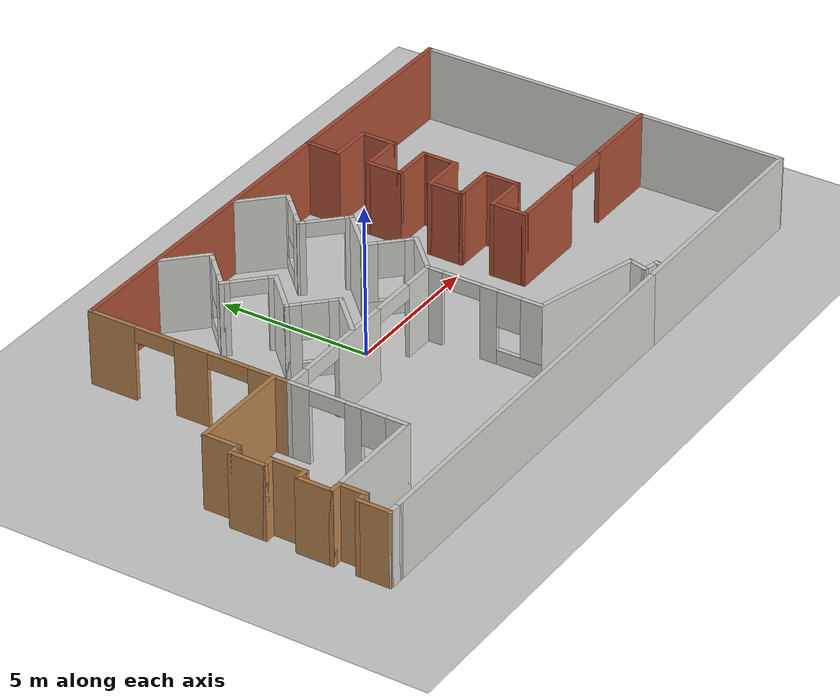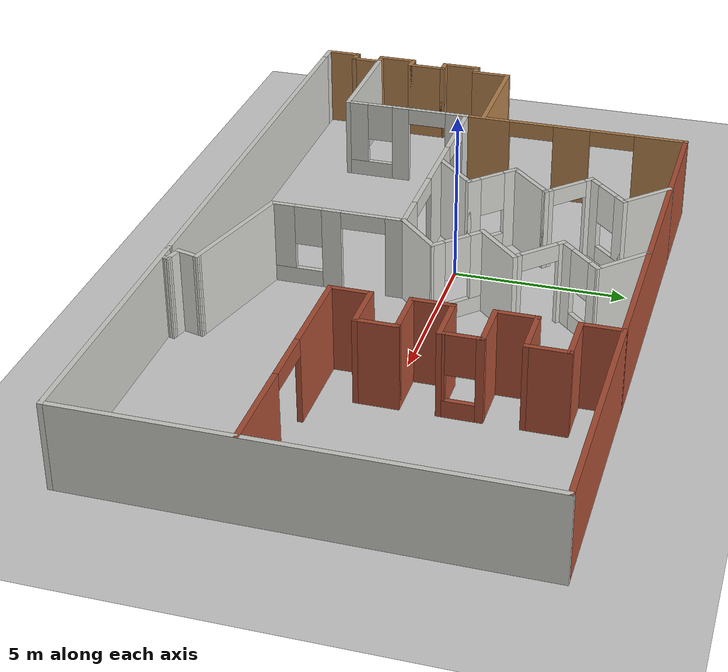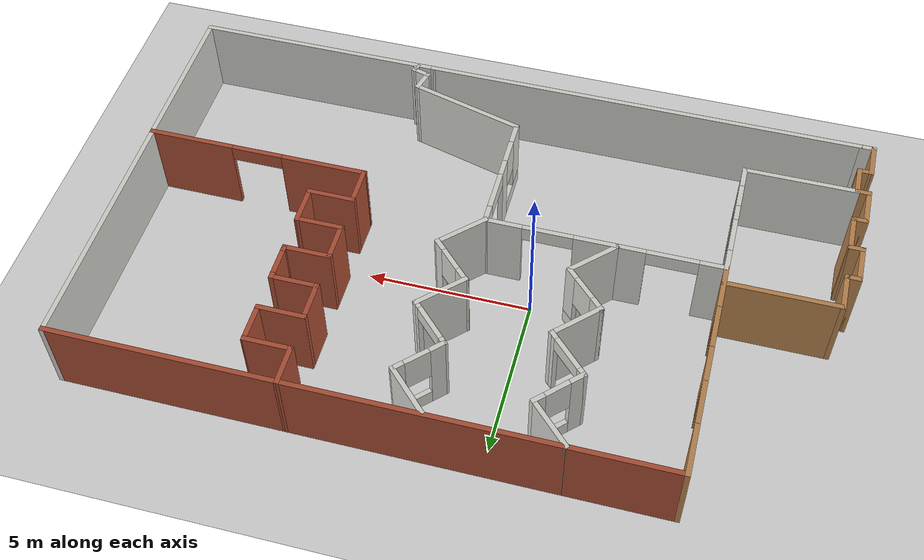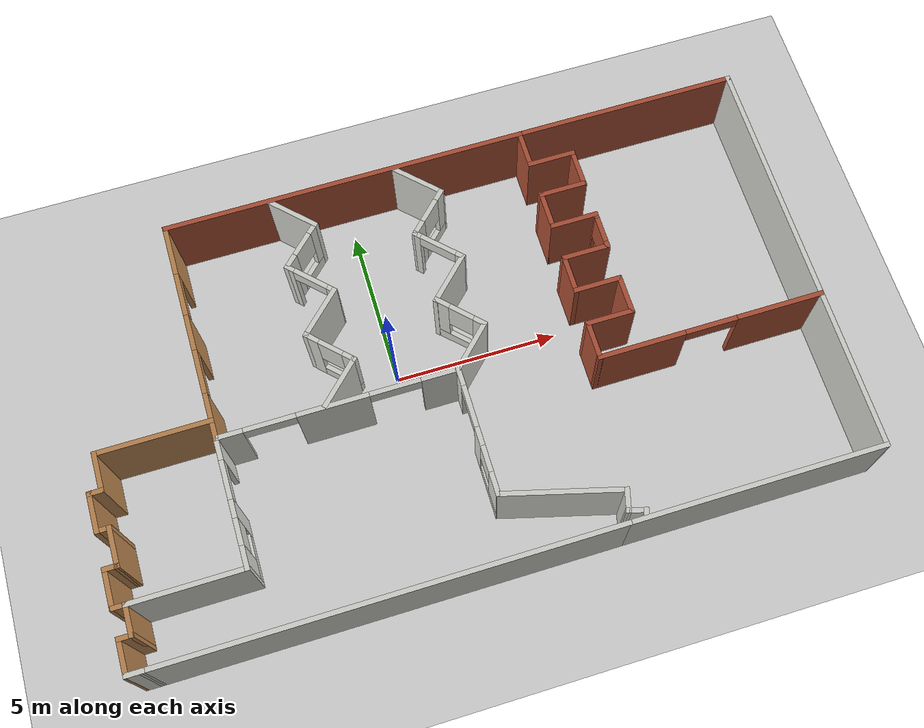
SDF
<sdf version="1.6">
 <world name="default">
  <model name="ground_plane">
   <static>1</static>
   <link name="link">
    <collision name="collision">
     <geometry><plane><normal>0 0 1</normal><size>100 100</size></plane></geometry>
     <surface>
      <contact><collide_bitmask>65535</collide_bitmask></contact>
      <friction><ode><mu>100</mu><mu2>50</mu2></ode></friction>
     </surface>
    </collision>
    <visual name="visual">
     <cast_shadows>0</cast_shadows>
     <geometry><plane><normal>0 0 1</normal><size>100 100</size></plane></geometry>
     <material>
      <script><uri>file://media/materials/scripts/gazebo.material</uri><name>Gazebo/Grey</name></script>
     </material>
    </visual>
   </link>
  </model>
  <model name="Building">
   <pose>1.68029 -0.499635 0 0 -0 0</pose>
   <link name="Wall_10">
    <collision name="Wall_10_Collision">
     <geometry><box><size>1.75 0.15 2.5</size></box></geometry>
     <pose>0 0 1.25 0 -0 0</pose>
    </collision>
    <visual name="Wall_10_Visual">
     <pose>0 0 1.25 0 -0 0</pose>
     <geometry><box><size>1.75 0.15 2.5</size></box></geometry>
     <material>
      <script><uri>file://media/materials/scripts/gazebo.material</uri><name>Gazebo/CeilingTiled</name></script>
      <ambient>0.819608 0.317647 0.317647 1</ambient>
     </material>
     <meta><layer>0</layer></meta>
    </visual>
    <pose>-3.36491 2.28919 0 0 -0 0.785398</pose>
   </link>
   <link name="Wall_101">
    <collision name="Wall_101_Collision">
     <geometry><box><size>3.69503 0.15 2.5</size></box></geometry>
     <pose>0 0 1.25 0 -0 0</pose>
    </collision>
    <visual name="Wall_101_Visual">
     <pose>0 0 1.25 0 -0 0</pose>
     <geometry><box><size>3.69503 0.15 2.5</size></box></geometry>
     <material>
      <script><uri>file://media/materials/scripts/gazebo.material</uri><name>Gazebo/CeilingTiled</name></script>
      <ambient>0.270588 0.431373 0.760784 1</ambient>
     </material>
     <meta><layer>0</layer></meta>
    </visual>
    <pose>1.71281 -4.90672 0 0 -0 2.88037</pose>
   </link>
   <link name="Wall_103">
    <collision name="Wall_103_Collision">
     <geometry><box><size>3.5 0.15 2.5</size></box></geometry>
     <pose>0 0 1.25 0 -0 0</pose>
    </collision>
    <visual name="Wall_103_Visual">
     <pose>0 0 1.25 0 -0 0</pose>
     <geometry><box><size>3.5 0.15 2.5</size></box></geometry>
     <material>
      <script><uri>file://media/materials/scripts/gazebo.material</uri><name>Gazebo/CeilingTiled</name></script>
      <ambient>0.901961 0.458824 0.458824 1</ambient>
     </material>
     <meta><layer>0</layer></meta>
    </visual>
    <pose>-8.79366 -4.43055 0 0 -0 3.14159</pose>
   </link>
   <link name="Wall_106">
    <collision name="Wall_106_Collision">
     <geometry><box><size>1 0.15 2.5</size></box></geometry>
     <pose>0 0 1.25 0 -0 0</pose>
    </collision>
    <visual name="Wall_106_Visual">
     <pose>0 0 1.25 0 -0 0</pose>
     <geometry><box><size>1 0.15 2.5</size></box></geometry>
     <material>
      <script><uri>file://media/materials/scripts/gazebo.material</uri><name>Gazebo/Wood</name></script>
      <ambient>1 1 1 1</ambient>
     </material>
     <meta><layer>0</layer></meta>
    </visual>
    <pose>-10.4687 -4.85555 0 0 -0 -1.5708</pose>
   </link>
   <link name="Wall_107">
    <collision name="Wall_107_Collision">
     <geometry><box><size>0.5 0.15 2.5</size></box></geometry>
     <pose>0 0 1.25 0 -0 0</pose>
    </collision>
    <visual name="Wall_107_Visual">
     <pose>0 0 1.25 0 -0 0</pose>
     <geometry><box><size>0.5 0.15 2.5</size></box></geometry>
     <material>
      <script><uri>file://media/materials/scripts/gazebo.material</uri><name>Gazebo/Wood</name></script>
      <ambient>1 1 1 1</ambient>
     </material>
     <meta><layer>0</layer></meta>
    </visual>
    <pose>-10.6437 -5.28055 0 0 -0 3.14159</pose>
   </link>
   <link name="Wall_109">
    <collision name="Wall_109_Collision">
     <geometry><box><size>1.14866 0.15 2.5</size></box></geometry>
     <pose>0 0 1.25 0 -0 0</pose>
    </collision>
    <visual name="Wall_109_Visual">
     <pose>0 0 1.25 0 -0 0</pose>
     <geometry><box><size>1.14866 0.15 2.5</size></box></geometry>
     <material>
      <script><uri>file://media/materials/scripts/gazebo.material</uri><name>Gazebo/Wood</name></script>
      <ambient>1 1 1 1</ambient>
     </material>
     <meta><layer>0</layer></meta>
    </visual>
    <pose>-10.8186 -5.77988 0 0 -0 -1.57071</pose>
   </link>
   <link name="Wall_11">
    <pose>-3.36491 3.42056 0 0 -0 2.35619</pose>
    <visual name="Wall_11_Visual_0">
     <pose>-0.725051 0 1.25 0 -0 0</pose>
     <geometry><box><size>0.299898 0.15 2.5</size></box></geometry>
     <material>
      <script><uri>file://media/materials/scripts/gazebo.material</uri><name>Gazebo/CeilingTiled</name></script>
      <ambient>0.819608 0.317647 0.317647 1</ambient>
     </material>
     <meta><layer>0</layer></meta>
    </visual>
    <collision name="Wall_11_Collision_0">
     <geometry><box><size>0.299898 0.15 2.5</size></box></geometry>
     <pose>-0.725051 0 1.25 0 -0 0</pose>
    </collision>
    <visual name="Wall_11_Visual_1">
     <pose>0.716913 0 1.25 0 -0 0</pose>
     <geometry><box><size>0.316173 0.15 2.5</size></box></geometry>
     <material>
      <script><uri>file://media/materials/scripts/gazebo.material</uri><name>Gazebo/CeilingTiled</name></script>
      <ambient>0.819608 0.317647 0.317647 1</ambient>
     </material>
     <meta><layer>0</layer></meta>
    </visual>
    <collision name="Wall_11_Collision_1">
     <geometry><box><size>0.316173 0.15 2.5</size></box></geometry>
     <pose>0.716913 0 1.25 0 -0 0</pose>
    </collision>
    <visual name="Wall_11_Visual_2">
     <pose>-0.008138 0 2.25 0 -0 0</pose>
     <geometry><box><size>1.13393 0.15 0.5</size></box></geometry>
     <material>
      <script><uri>file://media/materials/scripts/gazebo.material</uri><name>Gazebo/CeilingTiled</name></script>
      <ambient>0.819608 0.317647 0.317647 1</ambient>
     </material>
     <meta><layer>0</layer></meta>
    </visual>
    <collision name="Wall_11_Collision_2">
     <geometry><box><size>1.13393 0.15 0.5</size></box></geometry>
     <pose>-0.008138 0 2.25 0 -0 0</pose>
    </collision>
   </link>
   <link name="Wall_110">
    <collision name="Wall_110_Collision">
     <geometry><box><size>0.583483 0.15 2.5</size></box></geometry>
     <pose>0 0 1.25 0 -0 0</pose>
    </collision>
    <visual name="Wall_110_Visual">
     <pose>0 0 1.25 0 -0 0</pose>
     <geometry><box><size>0.583483 0.15 2.5</size></box></geometry>
     <material>
      <script><uri>file://media/materials/scripts/gazebo.material</uri><name>Gazebo/CeilingTiled</name></script>
      <ambient>0.760784 0.662745 0.627451 1</ambient>
     </material>
     <meta><layer>0</layer></meta>
    </visual>
    <pose>-10.6018 -6.27956 0 0 -0 -0.001671</pose>
   </link>
   <link name="Wall_113">
    <collision name="Wall_113_Collision">
     <geometry><box><size>0.5 0.15 2.5</size></box></geometry>
     <pose>0 0 1.25 0 -0 0</pose>
    </collision>
    <visual name="Wall_113_Visual">
     <pose>0 0 1.25 0 -0 0</pose>
     <geometry><box><size>0.5 0.15 2.5</size></box></geometry>
     <material>
      <script><uri>file://media/materials/scripts/gazebo.material</uri><name>Gazebo/Wood</name></script>
      <ambient>1 1 1 1</ambient>
     </material>
     <meta><layer>0</layer></meta>
    </visual>
    <pose>-10.6437 -4.43055 0 0 -0 3.14159</pose>
   </link>
   <link name="Wall_114">
    <collision name="Wall_114_Collision">
     <geometry><box><size>1.25 0.15 2.5</size></box></geometry>
     <pose>0 0 1.25 0 -0 0</pose>
    </collision>
    <visual name="Wall_114_Visual">
     <pose>0 0 1.25 0 -0 0</pose>
     <geometry><box><size>1.25 0.15 2.5</size></box></geometry>
     <material>
      <script><uri>file://media/materials/scripts/gazebo.material</uri><name>Gazebo/Wood</name></script>
      <ambient>1 1 1 1</ambient>
     </material>
     <meta><layer>0</layer></meta>
    </visual>
    <pose>-10.8187 -3.88055 0 0 -0 1.5708</pose>
   </link>
   <link name="Wall_115">
    <collision name="Wall_115_Collision">
     <geometry><box><size>0.5 0.15 2.5</size></box></geometry>
     <pose>0 0 1.25 0 -0 0</pose>
    </collision>
    <visual name="Wall_115_Visual">
     <pose>0 0 1.25 0 -0 0</pose>
     <geometry><box><size>0.5 0.15 2.5</size></box></geometry>
     <material>
      <script><uri>file://media/materials/scripts/gazebo.material</uri><name>Gazebo/Wood</name></script>
      <ambient>1 1 1 1</ambient>
     </material>
     <meta><layer>0</layer></meta>
    </visual>
    <pose>-10.6437 -3.33055 0 0 -0 0</pose>
   </link>
   <link name="Wall_116">
    <collision name="Wall_116_Collision">
     <geometry><box><size>1.25 0.15 2.5</size></box></geometry>
     <pose>0 0 1.25 0 -0 0</pose>
    </collision>
    <visual name="Wall_116_Visual">
     <pose>0 0 1.25 0 -0 0</pose>
     <geometry><box><size>1.25 0.15 2.5</size></box></geometry>
     <material>
      <script><uri>file://media/materials/scripts/gazebo.material</uri><name>Gazebo/Wood</name></script>
      <ambient>1 1 1 1</ambient>
     </material>
     <meta><layer>0</layer></meta>
    </visual>
    <pose>-10.4687 -2.78055 0 0 -0 1.5708</pose>
   </link>
   <link name="Wall_117">
    <collision name="Wall_117_Collision">
     <geometry><box><size>0.5 0.15 2.5</size></box></geometry>
     <pose>0 0 1.25 0 -0 0</pose>
    </collision>
    <visual name="Wall_117_Visual">
     <pose>0 0 1.25 0 -0 0</pose>
     <geometry><box><size>0.5 0.15 2.5</size></box></geometry>
     <material>
      <script><uri>file://media/materials/scripts/gazebo.material</uri><name>Gazebo/Wood</name></script>
      <ambient>1 1 1 1</ambient>
     </material>
     <meta><layer>0</layer></meta>
    </visual>
    <pose>-10.6437 -2.23055 0 0 -0 3.14159</pose>
   </link>
   <link name="Wall_118">
    <collision name="Wall_118_Collision">
     <geometry><box><size>1.25 0.15 2.5</size></box></geometry>
     <pose>0 0 1.25 0 -0 0</pose>
    </collision>
    <visual name="Wall_118_Visual">
     <pose>0 0 1.25 0 -0 0</pose>
     <geometry><box><size>1.25 0.15 2.5</size></box></geometry>
     <material>
      <script><uri>file://media/materials/scripts/gazebo.material</uri><name>Gazebo/Wood</name></script>
      <ambient>1 1 1 1</ambient>
     </material>
     <meta><layer>0</layer></meta>
    </visual>
    <pose>-10.8187 -1.68055 0 0 -0 1.5708</pose>
   </link>
   <link name="Wall_119">
    <collision name="Wall_119_Collision">
     <geometry><box><size>0.5 0.15 2.5</size></box></geometry>
     <pose>0 0 1.25 0 -0 0</pose>
    </collision>
    <visual name="Wall_119_Visual">
     <pose>0 0 1.25 0 -0 0</pose>
     <geometry><box><size>0.5 0.15 2.5</size></box></geometry>
     <material>
      <script><uri>file://media/materials/scripts/gazebo.material</uri><name>Gazebo/Wood</name></script>
      <ambient>1 1 1 1</ambient>
     </material>
     <meta><layer>0</layer></meta>
    </visual>
    <pose>-10.6437 -1.13055 0 0 -0 0</pose>
   </link>
   <link name="Wall_12">
    <pose>-3.36491 4.55193 0 0 -0 0.785398</pose>
    <visual name="Wall_12_Visual_0">
     <pose>-0.61476 0 1.25 0 -0 0</pose>
     <geometry><box><size>0.52048 0.15 2.5</size></box></geometry>
     <material>
      <script><uri>file://media/materials/scripts/gazebo.material</uri><name>Gazebo/CeilingTiled</name></script>
      <ambient>0.819608 0.317647 0.317647 1</ambient>
     </material>
     <meta><layer>0</layer></meta>
    </visual>
    <collision name="Wall_12_Collision_0">
     <geometry><box><size>0.52048 0.15 2.5</size></box></geometry>
     <pose>-0.61476 0 1.25 0 -0 0</pose>
    </collision>
    <visual name="Wall_12_Visual_1">
     <pose>0.26024 0 0.25 0 -0 0</pose>
     <geometry><box><size>1.22952 0.15 0.5</size></box></geometry>
     <material>
      <script><uri>file://media/materials/scripts/gazebo.material</uri><name>Gazebo/CeilingTiled</name></script>
      <ambient>0.819608 0.317647 0.317647 1</ambient>
     </material>
     <meta><layer>0</layer></meta>
    </visual>
    <collision name="Wall_12_Collision_1">
     <geometry><box><size>1.22952 0.15 0.5</size></box></geometry>
     <pose>0.26024 0 0.25 0 -0 0</pose>
    </collision>
    <visual name="Wall_12_Visual_2">
     <pose>0.66024 0 1.5 0 -0 0</pose>
     <geometry><box><size>0.42952 0.15 2</size></box></geometry>
     <material>
      <script><uri>file://media/materials/scripts/gazebo.material</uri><name>Gazebo/CeilingTiled</name></script>
      <ambient>0.819608 0.317647 0.317647 1</ambient>
     </material>
     <meta><layer>0</layer></meta>
    </visual>
    <collision name="Wall_12_Collision_2">
     <geometry><box><size>0.42952 0.15 2</size></box></geometry>
     <pose>0.66024 0 1.5 0 -0 0</pose>
    </collision>
    <visual name="Wall_12_Visual_3">
     <pose>0.04548 0 1.9 0 -0 0</pose>
     <geometry><box><size>0.8 0.15 1.2</size></box></geometry>
     <material>
      <script><uri>file://media/materials/scripts/gazebo.material</uri><name>Gazebo/CeilingTiled</name></script>
      <ambient>0.819608 0.317647 0.317647 1</ambient>
     </material>
     <meta><layer>0</layer></meta>
    </visual>
    <collision name="Wall_12_Collision_3">
     <geometry><box><size>0.8 0.15 1.2</size></box></geometry>
     <pose>0.04548 0 1.9 0 -0 0</pose>
    </collision>
   </link>
   <link name="Wall_120">
    <collision name="Wall_120_Collision">
     <geometry><box><size>1.25 0.15 2.5</size></box></geometry>
     <pose>0 0 1.25 0 -0 0</pose>
    </collision>
    <visual name="Wall_120_Visual">
     <pose>0 0 1.25 0 -0 0</pose>
     <geometry><box><size>1.25 0.15 2.5</size></box></geometry>
     <material>
      <script><uri>file://media/materials/scripts/gazebo.material</uri><name>Gazebo/Wood</name></script>
      <ambient>1 1 1 1</ambient>
     </material>
     <meta><layer>0</layer></meta>
    </visual>
    <pose>-10.4687 -0.580548 0 0 -0 1.5708</pose>
   </link>
   <link name="Wall_121">
    <collision name="Wall_121_Collision">
     <geometry><box><size>3.5 0.15 2.5</size></box></geometry>
     <pose>0 0 1.25 0 -0 0</pose>
    </collision>
    <visual name="Wall_121_Visual">
     <pose>0 0 1.25 0 -0 0</pose>
     <geometry><box><size>3.5 0.15 2.5</size></box></geometry>
     <material>
      <script><uri>file://media/materials/scripts/gazebo.material</uri><name>Gazebo/Wood</name></script>
      <ambient>1 1 1 1</ambient>
     </material>
     <meta><layer>0</layer></meta>
    </visual>
    <pose>-8.79366 -0.030549 0 0 -0 0</pose>
   </link>
   <link name="Wall_14">
    <collision name="Wall_14_Collision">
     <geometry><box><size>1.75 0.15 2.5</size></box></geometry>
     <pose>0 0 1.25 0 -0 0</pose>
    </collision>
    <visual name="Wall_14_Visual">
     <pose>0 0 1.25 0 -0 0</pose>
     <geometry><box><size>1.75 0.15 2.5</size></box></geometry>
     <material>
      <script><uri>file://media/materials/scripts/gazebo.material</uri><name>Gazebo/CeilingTiled</name></script>
      <ambient>0.819608 0.317647 0.317647 1</ambient>
     </material>
     <meta><layer>0</layer></meta>
    </visual>
    <pose>-3.36491 5.6833 0 0 -0 2.35619</pose>
   </link>
   <link name="Wall_18">
    <pose>-7.11866 -2.50555 0 0 -0 -1.5708</pose>
    <visual name="Wall_18_Visual_0">
     <pose>-1.63024 0 1.25 0 -0 0</pose>
     <geometry><box><size>0.739525 0.15 2.5</size></box></geometry>
     <material>
      <script><uri>file://media/materials/scripts/gazebo.material</uri><name>Gazebo/CeilingTiled</name></script>
      <ambient>0.901961 0.458824 0.458824 1</ambient>
     </material>
     <meta><layer>0</layer></meta>
    </visual>
    <collision name="Wall_18_Collision_0">
     <geometry><box><size>0.739525 0.15 2.5</size></box></geometry>
     <pose>-1.63024 0 1.25 0 -0 0</pose>
    </collision>
    <visual name="Wall_18_Visual_1">
     <pose>0.19611 0 1.25 0 -0 0</pose>
     <geometry><box><size>0.547855 0.15 2.5</size></box></geometry>
     <material>
      <script><uri>file://media/materials/scripts/gazebo.material</uri><name>Gazebo/CeilingTiled</name></script>
      <ambient>0.901961 0.458824 0.458824 1</ambient>
     </material>
     <meta><layer>0</layer></meta>
    </visual>
    <collision name="Wall_18_Collision_1">
     <geometry><box><size>0.547855 0.15 2.5</size></box></geometry>
     <pose>0.19611 0 1.25 0 -0 0</pose>
    </collision>
    <visual name="Wall_18_Visual_2">
     <pose>1.23502 0 0.25 0 -0 0</pose>
     <geometry><box><size>1.52996 0.15 0.5</size></box></geometry>
     <material>
      <script><uri>file://media/materials/scripts/gazebo.material</uri><name>Gazebo/CeilingTiled</name></script>
      <ambient>0.901961 0.458824 0.458824 1</ambient>
     </material>
     <meta><layer>0</layer></meta>
    </visual>
    <collision name="Wall_18_Collision_2">
     <geometry><box><size>1.52996 0.15 0.5</size></box></geometry>
     <pose>1.23502 0 0.25 0 -0 0</pose>
    </collision>
    <visual name="Wall_18_Visual_3">
     <pose>1.63502 0 1.5 0 -0 0</pose>
     <geometry><box><size>0.729962 0.15 2</size></box></geometry>
     <material>
      <script><uri>file://media/materials/scripts/gazebo.material</uri><name>Gazebo/CeilingTiled</name></script>
      <ambient>0.901961 0.458824 0.458824 1</ambient>
     </material>
     <meta><layer>0</layer></meta>
    </visual>
    <collision name="Wall_18_Collision_3">
     <geometry><box><size>0.729962 0.15 2</size></box></geometry>
     <pose>1.63502 0 1.5 0 -0 0</pose>
    </collision>
    <visual name="Wall_18_Visual_4">
     <pose>0.870038 0 1.9 0 -0 0</pose>
     <geometry><box><size>0.8 0.15 1.2</size></box></geometry>
     <material>
      <script><uri>file://media/materials/scripts/gazebo.material</uri><name>Gazebo/CeilingTiled</name></script>
      <ambient>0.901961 0.458824 0.458824 1</ambient>
     </material>
     <meta><layer>0</layer></meta>
    </visual>
    <collision name="Wall_18_Collision_4">
     <geometry><box><size>0.8 0.15 1.2</size></box></geometry>
     <pose>0.870038 0 1.9 0 -0 0</pose>
    </collision>
    <visual name="Wall_18_Visual_5">
     <pose>-0.669147 0 2.25 0 -0 0</pose>
     <geometry><box><size>1.18266 0.15 0.5</size></box></geometry>
     <material>
      <script><uri>file://media/materials/scripts/gazebo.material</uri><name>Gazebo/CeilingTiled</name></script>
      <ambient>0.901961 0.458824 0.458824 1</ambient>
     </material>
     <meta><layer>0</layer></meta>
    </visual>
    <collision name="Wall_18_Collision_5">
     <geometry><box><size>1.18266 0.15 0.5</size></box></geometry>
     <pose>-0.669147 0 2.25 0 -0 0</pose>
    </collision>
   </link>
   <link name="Wall_21">
    <pose>-0.018662 -2.50555 0 0 -0 -1.5708</pose>
    <visual name="Wall_21_Visual_0">
     <pose>-1.69808 0 1.25 0 -0 0</pose>
     <geometry><box><size>0.603849 0.15 2.5</size></box></geometry>
     <material>
      <script><uri>file://media/materials/scripts/gazebo.material</uri><name>Gazebo/CeilingTiled</name></script>
      <ambient>0.270588 0.431373 0.760784 1</ambient>
     </material>
     <meta><layer>0</layer></meta>
    </visual>
    <collision name="Wall_21_Collision_0">
     <geometry><box><size>0.603849 0.15 2.5</size></box></geometry>
     <pose>-1.69808 0 1.25 0 -0 0</pose>
    </collision>
    <visual name="Wall_21_Visual_1">
     <pose>0.184804 0 1.25 0 -0 0</pose>
     <geometry><box><size>0.570468 0.15 2.5</size></box></geometry>
     <material>
      <script><uri>file://media/materials/scripts/gazebo.material</uri><name>Gazebo/CeilingTiled</name></script>
      <ambient>0.270588 0.431373 0.760784 1</ambient>
     </material>
     <meta><layer>0</layer></meta>
    </visual>
    <collision name="Wall_21_Collision_1">
     <geometry><box><size>0.570468 0.15 2.5</size></box></geometry>
     <pose>0.184804 0 1.25 0 -0 0</pose>
    </collision>
    <visual name="Wall_21_Visual_2">
     <pose>1.23502 0 0.25 0 -0 0</pose>
     <geometry><box><size>1.52996 0.15 0.5</size></box></geometry>
     <material>
      <script><uri>file://media/materials/scripts/gazebo.material</uri><name>Gazebo/CeilingTiled</name></script>
      <ambient>0.270588 0.431373 0.760784 1</ambient>
     </material>
     <meta><layer>0</layer></meta>
    </visual>
    <collision name="Wall_21_Collision_2">
     <geometry><box><size>1.52996 0.15 0.5</size></box></geometry>
     <pose>1.23502 0 0.25 0 -0 0</pose>
    </collision>
    <visual name="Wall_21_Visual_3">
     <pose>1.63502 0 1.5 0 -0 0</pose>
     <geometry><box><size>0.729962 0.15 2</size></box></geometry>
     <material>
      <script><uri>file://media/materials/scripts/gazebo.material</uri><name>Gazebo/CeilingTiled</name></script>
      <ambient>0.270588 0.431373 0.760784 1</ambient>
     </material>
     <meta><layer>0</layer></meta>
    </visual>
    <collision name="Wall_21_Collision_3">
     <geometry><box><size>0.729962 0.15 2</size></box></geometry>
     <pose>1.63502 0 1.5 0 -0 0</pose>
    </collision>
    <visual name="Wall_21_Visual_4">
     <pose>0.870038 0 1.9 0 -0 0</pose>
     <geometry><box><size>0.8 0.15 1.2</size></box></geometry>
     <material>
      <script><uri>file://media/materials/scripts/gazebo.material</uri><name>Gazebo/CeilingTiled</name></script>
      <ambient>0.270588 0.431373 0.760784 1</ambient>
     </material>
     <meta><layer>0</layer></meta>
    </visual>
    <collision name="Wall_21_Collision_4">
     <geometry><box><size>0.8 0.15 1.2</size></box></geometry>
     <pose>0.870038 0 1.9 0 -0 0</pose>
    </collision>
    <visual name="Wall_21_Visual_5">
     <pose>-0.748291 0 2.25 0 -0 0</pose>
     <geometry><box><size>1.29572 0.15 0.5</size></box></geometry>
     <material>
      <script><uri>file://media/materials/scripts/gazebo.material</uri><name>Gazebo/CeilingTiled</name></script>
      <ambient>0.270588 0.431373 0.760784 1</ambient>
     </material>
     <meta><layer>0</layer></meta>
    </visual>
    <collision name="Wall_21_Collision_5">
     <geometry><box><size>1.29572 0.15 0.5</size></box></geometry>
     <pose>-0.748291 0 2.25 0 -0 0</pose>
    </collision>
   </link>
   <link name="Wall_4">
    <pose>-3.36491 1.15782 0 0 -0 -0.785398</pose>
    <visual name="Wall_4_Visual_0">
     <pose>-0.622738 0 1.25 0 -0 0</pose>
     <geometry><box><size>0.504524 0.15 2.5</size></box></geometry>
     <material>
      <script><uri>file://media/materials/scripts/gazebo.material</uri><name>Gazebo/CeilingTiled</name></script>
      <ambient>0.819608 0.317647 0.317647 1</ambient>
     </material>
     <meta><layer>0</layer></meta>
    </visual>
    <collision name="Wall_4_Collision_0">
     <geometry><box><size>0.504524 0.15 2.5</size></box></geometry>
     <pose>-0.622738 0 1.25 0 -0 0</pose>
    </collision>
    <visual name="Wall_4_Visual_1">
     <pose>0.252262 0 0.25 0 -0 0</pose>
     <geometry><box><size>1.24548 0.15 0.5</size></box></geometry>
     <material>
      <script><uri>file://media/materials/scripts/gazebo.material</uri><name>Gazebo/CeilingTiled</name></script>
      <ambient>0.819608 0.317647 0.317647 1</ambient>
     </material>
     <meta><layer>0</layer></meta>
    </visual>
    <collision name="Wall_4_Collision_1">
     <geometry><box><size>1.24548 0.15 0.5</size></box></geometry>
     <pose>0.252262 0 0.25 0 -0 0</pose>
    </collision>
    <visual name="Wall_4_Visual_2">
     <pose>0.652262 0 1.5 0 -0 0</pose>
     <geometry><box><size>0.445476 0.15 2</size></box></geometry>
     <material>
      <script><uri>file://media/materials/scripts/gazebo.material</uri><name>Gazebo/CeilingTiled</name></script>
      <ambient>0.819608 0.317647 0.317647 1</ambient>
     </material>
     <meta><layer>0</layer></meta>
    </visual>
    <collision name="Wall_4_Collision_2">
     <geometry><box><size>0.445476 0.15 2</size></box></geometry>
     <pose>0.652262 0 1.5 0 -0 0</pose>
    </collision>
    <visual name="Wall_4_Visual_3">
     <pose>0.029524 0 1.9 0 -0 0</pose>
     <geometry><box><size>0.8 0.15 1.2</size></box></geometry>
     <material>
      <script><uri>file://media/materials/scripts/gazebo.material</uri><name>Gazebo/CeilingTiled</name></script>
      <ambient>0.819608 0.317647 0.317647 1</ambient>
     </material>
     <meta><layer>0</layer></meta>
    </visual>
    <collision name="Wall_4_Collision_3">
     <geometry><box><size>0.8 0.15 1.2</size></box></geometry>
     <pose>0.029524 0 1.9 0 -0 0</pose>
    </collision>
   </link>
   <link name="Wall_43">
    <collision name="Wall_43_Collision">
     <geometry><box><size>13.7085 0.15 2.5</size></box></geometry>
     <pose>0 0 1.25 0 -0 0</pose>
    </collision>
    <visual name="Wall_43_Visual">
     <pose>0 0 1.25 0 -0 0</pose>
     <geometry><box><size>13.7085 0.15 2.5</size></box></geometry>
     <material>
      <script><uri>file://media/materials/scripts/gazebo.material</uri><name>Gazebo/CeilingTiled</name></script>
      <ambient>0.760784 0.662745 0.627451 1</ambient>
     </material>
     <meta><layer>0</layer></meta>
    </visual>
    <pose>-3.60582 -6.27971 0 0 -0 3.2e-05</pose>
   </link>
   <link name="Wall_48">
    <collision name="Wall_48_Collision">
     <geometry><box><size>1.75 0.15 2.5</size></box></geometry>
     <pose>0 0 1.25 0 -0 0</pose>
    </collision>
    <visual name="Wall_48_Visual">
     <pose>0 0 1.25 0 -0 0</pose>
     <geometry><box><size>1.75 0.15 2.5</size></box></geometry>
     <material>
      <script><uri>file://media/materials/scripts/gazebo.material</uri><name>Gazebo/CeilingTiled</name></script>
      <ambient>0.447059 0.623529 0.811765 1</ambient>
     </material>
     <meta><layer>0</layer></meta>
    </visual>
    <pose>0.547024 -0.014863 0 0 -0 0.785398</pose>
   </link>
   <link name="Wall_5">
    <collision name="Wall_5_Collision">
     <geometry><box><size>1.75 0.15 2.5</size></box></geometry>
     <pose>0 0 1.25 0 -0 0</pose>
    </collision>
    <visual name="Wall_5_Visual">
     <pose>0 0 1.25 0 -0 0</pose>
     <geometry><box><size>1.75 0.15 2.5</size></box></geometry>
     <material>
      <script><uri>file://media/materials/scripts/gazebo.material</uri><name>Gazebo/CeilingTiled</name></script>
      <ambient>0.819608 0.317647 0.317647 1</ambient>
     </material>
     <meta><layer>0</layer></meta>
    </visual>
    <pose>-3.36491 0.026446 0 0 -0 -2.35619</pose>
   </link>
   <link name="Wall_50">
    <pose>0.551323 1.11651 0 0 -0 2.35238</pose>
    <visual name="Wall_50_Visual_0">
     <pose>-0.655708 0 1.25 0 -0 0</pose>
     <geometry><box><size>0.432515 0.15 2.5</size></box></geometry>
     <material>
      <script><uri>file://media/materials/scripts/gazebo.material</uri><name>Gazebo/CeilingTiled</name></script>
      <ambient>0.447059 0.623529 0.811765 1</ambient>
     </material>
     <meta><layer>0</layer></meta>
    </visual>
    <collision name="Wall_50_Collision_0">
     <geometry><box><size>0.432515 0.15 2.5</size></box></geometry>
     <pose>-0.655708 0 1.25 0 -0 0</pose>
    </collision>
    <visual name="Wall_50_Visual_1">
     <pose>0.216258 0 0.25 0 -0 0</pose>
     <geometry><box><size>1.31142 0.15 0.5</size></box></geometry>
     <material>
      <script><uri>file://media/materials/scripts/gazebo.material</uri><name>Gazebo/CeilingTiled</name></script>
      <ambient>0.447059 0.623529 0.811765 1</ambient>
     </material>
     <meta><layer>0</layer></meta>
    </visual>
    <collision name="Wall_50_Collision_1">
     <geometry><box><size>1.31142 0.15 0.5</size></box></geometry>
     <pose>0.216258 0 0.25 0 -0 0</pose>
    </collision>
    <visual name="Wall_50_Visual_2">
     <pose>0.616258 0 1.5 0 -0 0</pose>
     <geometry><box><size>0.511417 0.15 2</size></box></geometry>
     <material>
      <script><uri>file://media/materials/scripts/gazebo.material</uri><name>Gazebo/CeilingTiled</name></script>
      <ambient>0.447059 0.623529 0.811765 1</ambient>
     </material>
     <meta><layer>0</layer></meta>
    </visual>
    <collision name="Wall_50_Collision_2">
     <geometry><box><size>0.511417 0.15 2</size></box></geometry>
     <pose>0.616258 0 1.5 0 -0 0</pose>
    </collision>
    <visual name="Wall_50_Visual_3">
     <pose>-0.039451 0 1.9 0 -0 0</pose>
     <geometry><box><size>0.8 0.15 1.2</size></box></geometry>
     <material>
      <script><uri>file://media/materials/scripts/gazebo.material</uri><name>Gazebo/CeilingTiled</name></script>
      <ambient>0.447059 0.623529 0.811765 1</ambient>
     </material>
     <meta><layer>0</layer></meta>
    </visual>
    <collision name="Wall_50_Collision_3">
     <geometry><box><size>0.8 0.15 1.2</size></box></geometry>
     <pose>-0.039451 0 1.9 0 -0 0</pose>
    </collision>
   </link>
   <link name="Wall_51">
    <collision name="Wall_51_Collision">
     <geometry><box><size>1.75 0.15 2.5</size></box></geometry>
     <pose>0 0 1.25 0 -0 0</pose>
    </collision>
    <visual name="Wall_51_Visual">
     <pose>0 0 1.25 0 -0 0</pose>
     <geometry><box><size>1.75 0.15 2.5</size></box></geometry>
     <material>
      <script><uri>file://media/materials/scripts/gazebo.material</uri><name>Gazebo/CeilingTiled</name></script>
      <ambient>0.447059 0.623529 0.811765 1</ambient>
     </material>
     <meta><layer>0</layer></meta>
    </visual>
    <pose>0.547024 2.23928 0 0 -0 0.785398</pose>
   </link>
   <link name="Wall_53">
    <pose>0.547024 3.37065 0 0 -0 2.35619</pose>
    <visual name="Wall_53_Visual_0">
     <pose>-0.730842 0 1.25 0 -0 0</pose>
     <geometry><box><size>0.288315 0.15 2.5</size></box></geometry>
     <material>
      <script><uri>file://media/materials/scripts/gazebo.material</uri><name>Gazebo/CeilingTiled</name></script>
      <ambient>0.447059 0.623529 0.811765 1</ambient>
     </material>
     <meta><layer>0</layer></meta>
    </visual>
    <collision name="Wall_53_Collision_0">
     <geometry><box><size>0.288315 0.15 2.5</size></box></geometry>
     <pose>-0.730842 0 1.25 0 -0 0</pose>
    </collision>
    <visual name="Wall_53_Visual_1">
     <pose>0.737705 0 1.25 0 -0 0</pose>
     <geometry><box><size>0.274591 0.15 2.5</size></box></geometry>
     <material>
      <script><uri>file://media/materials/scripts/gazebo.material</uri><name>Gazebo/CeilingTiled</name></script>
      <ambient>0.447059 0.623529 0.811765 1</ambient>
     </material>
     <meta><layer>0</layer></meta>
    </visual>
    <collision name="Wall_53_Collision_1">
     <geometry><box><size>0.274591 0.15 2.5</size></box></geometry>
     <pose>0.737705 0 1.25 0 -0 0</pose>
    </collision>
    <visual name="Wall_53_Visual_2">
     <pose>0.006862 0 2.25 0 -0 0</pose>
     <geometry><box><size>1.18709 0.15 0.5</size></box></geometry>
     <material>
      <script><uri>file://media/materials/scripts/gazebo.material</uri><name>Gazebo/CeilingTiled</name></script>
      <ambient>0.447059 0.623529 0.811765 1</ambient>
     </material>
     <meta><layer>0</layer></meta>
    </visual>
    <collision name="Wall_53_Collision_2">
     <geometry><box><size>1.18709 0.15 0.5</size></box></geometry>
     <pose>0.006862 0 2.25 0 -0 0</pose>
    </collision>
   </link>
   <link name="Wall_54">
    <pose>0.547024 4.50632 0 0 -0 0.789183</pose>
    <visual name="Wall_54_Visual_0">
     <pose>-0.605285 0 1.25 0 -0 0</pose>
     <geometry><box><size>0.545521 0.15 2.5</size></box></geometry>
     <material>
      <script><uri>file://media/materials/scripts/gazebo.material</uri><name>Gazebo/CeilingTiled</name></script>
      <ambient>0.447059 0.623529 0.811765 1</ambient>
     </material>
     <meta><layer>0</layer></meta>
    </visual>
    <collision name="Wall_54_Collision_0">
     <geometry><box><size>0.545521 0.15 2.5</size></box></geometry>
     <pose>-0.605285 0 1.25 0 -0 0</pose>
    </collision>
    <visual name="Wall_54_Visual_1">
     <pose>0.272761 0 0.25 0 -0 0</pose>
     <geometry><box><size>1.21057 0.15 0.5</size></box></geometry>
     <material>
      <script><uri>file://media/materials/scripts/gazebo.material</uri><name>Gazebo/CeilingTiled</name></script>
      <ambient>0.447059 0.623529 0.811765 1</ambient>
     </material>
     <meta><layer>0</layer></meta>
    </visual>
    <collision name="Wall_54_Collision_1">
     <geometry><box><size>1.21057 0.15 0.5</size></box></geometry>
     <pose>0.272761 0 0.25 0 -0 0</pose>
    </collision>
    <visual name="Wall_54_Visual_2">
     <pose>0.672761 0 1.5 0 -0 0</pose>
     <geometry><box><size>0.41057 0.15 2</size></box></geometry>
     <material>
      <script><uri>file://media/materials/scripts/gazebo.material</uri><name>Gazebo/CeilingTiled</name></script>
      <ambient>0.447059 0.623529 0.811765 1</ambient>
     </material>
     <meta><layer>0</layer></meta>
    </visual>
    <collision name="Wall_54_Collision_2">
     <geometry><box><size>0.41057 0.15 2</size></box></geometry>
     <pose>0.672761 0 1.5 0 -0 0</pose>
    </collision>
    <visual name="Wall_54_Visual_3">
     <pose>0.067476 0 1.9 0 -0 0</pose>
     <geometry><box><size>0.8 0.15 1.2</size></box></geometry>
     <material>
      <script><uri>file://media/materials/scripts/gazebo.material</uri><name>Gazebo/CeilingTiled</name></script>
      <ambient>0.447059 0.623529 0.811765 1</ambient>
     </material>
     <meta><layer>0</layer></meta>
    </visual>
    <collision name="Wall_54_Collision_3">
     <geometry><box><size>0.8 0.15 1.2</size></box></geometry>
     <pose>0.067476 0 1.9 0 -0 0</pose>
    </collision>
   </link>
   <link name="Wall_55">
    <collision name="Wall_55_Collision">
     <geometry><box><size>1.75 0.15 2.5</size></box></geometry>
     <pose>0 0 1.25 0 -0 0</pose>
    </collision>
    <visual name="Wall_55_Visual">
     <pose>0 0 1.25 0 -0 0</pose>
     <geometry><box><size>1.75 0.15 2.5</size></box></geometry>
     <material>
      <script><uri>file://media/materials/scripts/gazebo.material</uri><name>Gazebo/CeilingTiled</name></script>
      <ambient>0.447059 0.623529 0.811765 1</ambient>
     </material>
     <meta><layer>0</layer></meta>
    </visual>
    <pose>0.547024 5.64199 0 0 -0 2.35619</pose>
   </link>
   <link name="Wall_61">
    <pose>-7.11866 2.84445 0 0 -0 1.5708</pose>
    <visual name="Wall_61_Visual_0">
     <pose>-2.76325 0 1.25 0 -0 0</pose>
     <geometry><box><size>1.4735 0.15 2.5</size></box></geometry>
     <material>
      <script><uri>file://media/materials/scripts/gazebo.material</uri><name>Gazebo/Wood</name></script>
      <ambient>1 1 1 1</ambient>
     </material>
     <meta><layer>0</layer></meta>
    </visual>
    <collision name="Wall_61_Collision_0">
     <geometry><box><size>1.4735 0.15 2.5</size></box></geometry>
     <pose>-2.76325 0 1.25 0 -0 0</pose>
    </collision>
    <visual name="Wall_61_Visual_1">
     <pose>-0.068748 0 1.25 0 -0 0</pose>
     <geometry><box><size>1.14159 0.15 2.5</size></box></geometry>
     <material>
      <script><uri>file://media/materials/scripts/gazebo.material</uri><name>Gazebo/Wood</name></script>
      <ambient>1 1 1 1</ambient>
     </material>
     <meta><layer>0</layer></meta>
    </visual>
    <collision name="Wall_61_Collision_1">
     <geometry><box><size>1.14159 0.15 2.5</size></box></geometry>
     <pose>-0.068748 0 1.25 0 -0 0</pose>
    </collision>
    <visual name="Wall_61_Visual_2">
     <pose>2.68581 0 1.25 0 -0 0</pose>
     <geometry><box><size>1.62839 0.15 2.5</size></box></geometry>
     <material>
      <script><uri>file://media/materials/scripts/gazebo.material</uri><name>Gazebo/Wood</name></script>
      <ambient>1 1 1 1</ambient>
     </material>
     <meta><layer>0</layer></meta>
    </visual>
    <collision name="Wall_61_Collision_2">
     <geometry><box><size>1.62839 0.15 2.5</size></box></geometry>
     <pose>2.68581 0 1.25 0 -0 0</pose>
    </collision>
    <visual name="Wall_61_Visual_3">
     <pose>-1.33302 0 2.25 0 -0 0</pose>
     <geometry><box><size>1.38696 0.15 0.5</size></box></geometry>
     <material>
      <script><uri>file://media/materials/scripts/gazebo.material</uri><name>Gazebo/Wood</name></script>
      <ambient>1 1 1 1</ambient>
     </material>
     <meta><layer>0</layer></meta>
    </visual>
    <collision name="Wall_61_Collision_3">
     <geometry><box><size>1.38696 0.15 0.5</size></box></geometry>
     <pose>-1.33302 0 2.25 0 -0 0</pose>
    </collision>
    <visual name="Wall_61_Visual_4">
     <pose>1.18683 0 2.25 0 -0 0</pose>
     <geometry><box><size>1.36956 0.15 0.5</size></box></geometry>
     <material>
      <script><uri>file://media/materials/scripts/gazebo.material</uri><name>Gazebo/Wood</name></script>
      <ambient>1 1 1 1</ambient>
     </material>
     <meta><layer>0</layer></meta>
    </visual>
    <collision name="Wall_61_Collision_4">
     <geometry><box><size>1.36956 0.15 0.5</size></box></geometry>
     <pose>1.18683 0 2.25 0 -0 0</pose>
    </collision>
   </link>
   <link name="Wall_62">
    <collision name="Wall_62_Collision">
     <geometry><box><size>11.25 0.15 2.5</size></box></geometry>
     <pose>0 0 1.25 0 -0 0</pose>
    </collision>
    <visual name="Wall_62_Visual">
     <pose>0 0 1.25 0 -0 0</pose>
     <geometry><box><size>11.25 0.15 2.5</size></box></geometry>
     <material>
      <script><uri>file://media/materials/scripts/gazebo.material</uri><name>Gazebo/Bricks</name></script>
      <ambient>1 1 1 1</ambient>
     </material>
     <meta><layer>0</layer></meta>
    </visual>
    <pose>-1.56866 6.26945 0 0 -0 0</pose>
   </link>
   <link name="Wall_64">
    <collision name="Wall_64_Collision">
     <geometry><box><size>1.25 0.15 2.5</size></box></geometry>
     <pose>0 0 1.25 0 -0 0</pose>
    </collision>
    <visual name="Wall_64_Visual">
     <pose>0 0 1.25 0 -0 0</pose>
     <geometry><box><size>1.25 0.15 2.5</size></box></geometry>
     <material>
      <script><uri>file://media/materials/scripts/gazebo.material</uri><name>Gazebo/Bricks</name></script>
      <ambient>1 1 1 1</ambient>
     </material>
     <meta><layer>0</layer></meta>
    </visual>
    <pose>3.98134 5.71945 0 0 -0 -1.5708</pose>
   </link>
   <link name="Wall_65">
    <collision name="Wall_65_Collision">
     <geometry><box><size>1.5 0.15 2.5</size></box></geometry>
     <pose>0 0 1.25 0 -0 0</pose>
    </collision>
    <visual name="Wall_65_Visual">
     <pose>0 0 1.25 0 -0 0</pose>
     <geometry><box><size>1.5 0.15 2.5</size></box></geometry>
     <material>
      <script><uri>file://media/materials/scripts/gazebo.material</uri><name>Gazebo/Bricks</name></script>
      <ambient>1 1 1 1</ambient>
     </material>
     <meta><layer>0</layer></meta>
    </visual>
    <pose>4.65634 5.16945 0 0 -0 0</pose>
   </link>
   <link name="Wall_66">
    <collision name="Wall_66_Collision">
     <geometry><box><size>1.25 0.15 2.5</size></box></geometry>
     <pose>0 0 1.25 0 -0 0</pose>
    </collision>
    <visual name="Wall_66_Visual">
     <pose>0 0 1.25 0 -0 0</pose>
     <geometry><box><size>1.25 0.15 2.5</size></box></geometry>
     <material>
      <script><uri>file://media/materials/scripts/gazebo.material</uri><name>Gazebo/Bricks</name></script>
      <ambient>1 1 1 1</ambient>
     </material>
     <meta><layer>0</layer></meta>
    </visual>
    <pose>5.33134 4.61945 0 0 -0 -1.5708</pose>
   </link>
   <link name="Wall_67">
    <collision name="Wall_67_Collision">
     <geometry><box><size>1.5 0.15 2.5</size></box></geometry>
     <pose>0 0 1.25 0 -0 0</pose>
    </collision>
    <visual name="Wall_67_Visual">
     <pose>0 0 1.25 0 -0 0</pose>
     <geometry><box><size>1.5 0.15 2.5</size></box></geometry>
     <material>
      <script><uri>file://media/materials/scripts/gazebo.material</uri><name>Gazebo/Bricks</name></script>
      <ambient>1 1 1 1</ambient>
     </material>
     <meta><layer>0</layer></meta>
    </visual>
    <pose>4.65634 4.06945 0 0 -0 3.14159</pose>
   </link>
   <link name="Wall_68">
    <collision name="Wall_68_Collision">
     <geometry><box><size>1.25 0.15 2.5</size></box></geometry>
     <pose>0 0 1.25 0 -0 0</pose>
    </collision>
    <visual name="Wall_68_Visual">
     <pose>0 0 1.25 0 -0 0</pose>
     <geometry><box><size>1.25 0.15 2.5</size></box></geometry>
     <material>
      <script><uri>file://media/materials/scripts/gazebo.material</uri><name>Gazebo/Bricks</name></script>
      <ambient>1 1 1 1</ambient>
     </material>
     <meta><layer>0</layer></meta>
    </visual>
    <pose>3.98134 3.51945 0 0 -0 -1.5708</pose>
   </link>
   <link name="Wall_69">
    <collision name="Wall_69_Collision">
     <geometry><box><size>1.5 0.15 2.5</size></box></geometry>
     <pose>0 0 1.25 0 -0 0</pose>
    </collision>
    <visual name="Wall_69_Visual">
     <pose>0 0 1.25 0 -0 0</pose>
     <geometry><box><size>1.5 0.15 2.5</size></box></geometry>
     <material>
      <script><uri>file://media/materials/scripts/gazebo.material</uri><name>Gazebo/Bricks</name></script>
      <ambient>1 1 1 1</ambient>
     </material>
     <meta><layer>0</layer></meta>
    </visual>
    <pose>4.65634 2.96945 0 0 -0 0</pose>
   </link>
   <link name="Wall_7">
    <pose>-3.56866 -0.580548 0 0 -0 0</pose>
    <visual name="Wall_7_Visual_0">
     <pose>-3.20048 0 1.25 0 -0 0</pose>
     <geometry><box><size>0.849038 0.15 2.5</size></box></geometry>
     <material>
      <script><uri>file://media/materials/scripts/gazebo.material</uri><name>Gazebo/CeilingTiled</name></script>
      <ambient>0.901961 0.458824 0.458824 1</ambient>
     </material>
     <meta><layer>0</layer></meta>
    </visual>
    <collision name="Wall_7_Collision_0">
     <geometry><box><size>0.849038 0.15 2.5</size></box></geometry>
     <pose>-3.20048 0 1.25 0 -0 0</pose>
    </collision>
    <visual name="Wall_7_Visual_1">
     <pose>-0.160732 0 1.25 0 -0 0</pose>
     <geometry><box><size>2.14454 0.15 2.5</size></box></geometry>
     <material>
      <script><uri>file://media/materials/scripts/gazebo.material</uri><name>Gazebo/CeilingTiled</name></script>
      <ambient>0.901961 0.458824 0.458824 1</ambient>
     </material>
     <meta><layer>0</layer></meta>
    </visual>
    <collision name="Wall_7_Collision_1">
     <geometry><box><size>2.14454 0.15 2.5</size></box></geometry>
     <pose>-0.160732 0 1.25 0 -0 0</pose>
    </collision>
    <visual name="Wall_7_Visual_2">
     <pose>3.03227 0 1.25 0 -0 0</pose>
     <geometry><box><size>1.18546 0.15 2.5</size></box></geometry>
     <material>
      <script><uri>file://media/materials/scripts/gazebo.material</uri><name>Gazebo/CeilingTiled</name></script>
      <ambient>0.901961 0.458824 0.458824 1</ambient>
     </material>
     <meta><layer>0</layer></meta>
    </visual>
    <collision name="Wall_7_Collision_2">
     <geometry><box><size>1.18546 0.15 2.5</size></box></geometry>
     <pose>3.03227 0 1.25 0 -0 0</pose>
    </collision>
    <visual name="Wall_7_Visual_3">
     <pose>-2.00448 0 2.25 0 -0 0</pose>
     <geometry><box><size>1.54296 0.15 0.5</size></box></geometry>
     <material>
      <script><uri>file://media/materials/scripts/gazebo.material</uri><name>Gazebo/CeilingTiled</name></script>
      <ambient>0.901961 0.458824 0.458824 1</ambient>
     </material>
     <meta><layer>0</layer></meta>
    </visual>
    <collision name="Wall_7_Collision_3">
     <geometry><box><size>1.54296 0.15 0.5</size></box></geometry>
     <pose>-2.00448 0 2.25 0 -0 0</pose>
    </collision>
    <visual name="Wall_7_Visual_4">
     <pose>1.67554 0 2.25 0 -0 0</pose>
     <geometry><box><size>1.52801 0.15 0.5</size></box></geometry>
     <material>
      <script><uri>file://media/materials/scripts/gazebo.material</uri><name>Gazebo/CeilingTiled</name></script>
      <ambient>0.901961 0.458824 0.458824 1</ambient>
     </material>
     <meta><layer>0</layer></meta>
    </visual>
    <collision name="Wall_7_Collision_4">
     <geometry><box><size>1.52801 0.15 0.5</size></box></geometry>
     <pose>1.67554 0 2.25 0 -0 0</pose>
    </collision>
   </link>
   <link name="Wall_70">
    <pose>5.33134 2.41945 0 0 -0 -1.5708</pose>
    <visual name="Wall_70_Visual_0">
     <pose>-0.513925 0 1.25 0 -0 0</pose>
     <geometry><box><size>0.22215 0.15 2.5</size></box></geometry>
     <material>
      <script><uri>file://media/materials/scripts/gazebo.material</uri><name>Gazebo/Bricks</name></script>
      <ambient>1 1 1 1</ambient>
     </material>
     <meta><layer>0</layer></meta>
    </visual>
    <collision name="Wall_70_Collision_0">
     <geometry><box><size>0.22215 0.15 2.5</size></box></geometry>
     <pose>-0.513925 0 1.25 0 -0 0</pose>
    </collision>
    <visual name="Wall_70_Visual_1">
     <pose>0.111075 0 0.25 0 -0 0</pose>
     <geometry><box><size>1.02785 0.15 0.5</size></box></geometry>
     <material>
      <script><uri>file://media/materials/scripts/gazebo.material</uri><name>Gazebo/Bricks</name></script>
      <ambient>1 1 1 1</ambient>
     </material>
     <meta><layer>0</layer></meta>
    </visual>
    <collision name="Wall_70_Collision_1">
     <geometry><box><size>1.02785 0.15 0.5</size></box></geometry>
     <pose>0.111075 0 0.25 0 -0 0</pose>
    </collision>
    <visual name="Wall_70_Visual_2">
     <pose>0.511075 0 1.5 0 -0 0</pose>
     <geometry><box><size>0.22785 0.15 2</size></box></geometry>
     <material>
      <script><uri>file://media/materials/scripts/gazebo.material</uri><name>Gazebo/Bricks</name></script>
      <ambient>1 1 1 1</ambient>
     </material>
     <meta><layer>0</layer></meta>
    </visual>
    <collision name="Wall_70_Collision_2">
     <geometry><box><size>0.22785 0.15 2</size></box></geometry>
     <pose>0.511075 0 1.5 0 -0 0</pose>
    </collision>
    <visual name="Wall_70_Visual_3">
     <pose>-0.00285 0 1.9 0 -0 0</pose>
     <geometry><box><size>0.8 0.15 1.2</size></box></geometry>
     <material>
      <script><uri>file://media/materials/scripts/gazebo.material</uri><name>Gazebo/Bricks</name></script>
      <ambient>1 1 1 1</ambient>
     </material>
     <meta><layer>0</layer></meta>
    </visual>
    <collision name="Wall_70_Collision_3">
     <geometry><box><size>0.8 0.15 1.2</size></box></geometry>
     <pose>-0.00285 0 1.9 0 -0 0</pose>
    </collision>
   </link>
   <link name="Wall_71">
    <collision name="Wall_71_Collision">
     <geometry><box><size>1.5 0.15 2.5</size></box></geometry>
     <pose>0 0 1.25 0 -0 0</pose>
    </collision>
    <visual name="Wall_71_Visual">
     <pose>0 0 1.25 0 -0 0</pose>
     <geometry><box><size>1.5 0.15 2.5</size></box></geometry>
     <material>
      <script><uri>file://media/materials/scripts/gazebo.material</uri><name>Gazebo/Bricks</name></script>
      <ambient>1 1 1 1</ambient>
     </material>
     <meta><layer>0</layer></meta>
    </visual>
    <pose>4.65634 1.86945 0 0 -0 3.14159</pose>
   </link>
   <link name="Wall_72">
    <collision name="Wall_72_Collision">
     <geometry><box><size>1.25 0.15 2.5</size></box></geometry>
     <pose>0 0 1.25 0 -0 0</pose>
    </collision>
    <visual name="Wall_72_Visual">
     <pose>0 0 1.25 0 -0 0</pose>
     <geometry><box><size>1.25 0.15 2.5</size></box></geometry>
     <material>
      <script><uri>file://media/materials/scripts/gazebo.material</uri><name>Gazebo/Bricks</name></script>
      <ambient>1 1 1 1</ambient>
     </material>
     <meta><layer>0</layer></meta>
    </visual>
    <pose>3.98134 1.31945 0 0 -0 -1.5708</pose>
   </link>
   <link name="Wall_74">
    <collision name="Wall_74_Collision">
     <geometry><box><size>1.5 0.15 2.5</size></box></geometry>
     <pose>0 0 1.25 0 -0 0</pose>
    </collision>
    <visual name="Wall_74_Visual">
     <pose>0 0 1.25 0 -0 0</pose>
     <geometry><box><size>1.5 0.15 2.5</size></box></geometry>
     <material>
      <script><uri>file://media/materials/scripts/gazebo.material</uri><name>Gazebo/Bricks</name></script>
      <ambient>1 1 1 1</ambient>
     </material>
     <meta><layer>0</layer></meta>
    </visual>
    <pose>4.65634 0.769451 0 0 -0 0</pose>
   </link>
   <link name="Wall_75">
    <collision name="Wall_75_Collision">
     <geometry><box><size>1.25 0.15 2.5</size></box></geometry>
     <pose>0 0 1.25 0 -0 0</pose>
    </collision>
    <visual name="Wall_75_Visual">
     <pose>0 0 1.25 0 -0 0</pose>
     <geometry><box><size>1.25 0.15 2.5</size></box></geometry>
     <material>
      <script><uri>file://media/materials/scripts/gazebo.material</uri><name>Gazebo/Bricks</name></script>
      <ambient>1 1 1 1</ambient>
     </material>
     <meta><layer>0</layer></meta>
    </visual>
    <pose>5.33134 0.219451 0 0 -0 -1.5708</pose>
   </link>
   <link name="Wall_76">
    <collision name="Wall_76_Collision">
     <geometry><box><size>1.5 0.15 2.5</size></box></geometry>
     <pose>0 0 1.25 0 -0 0</pose>
    </collision>
    <visual name="Wall_76_Visual">
     <pose>0 0 1.25 0 -0 0</pose>
     <geometry><box><size>1.5 0.15 2.5</size></box></geometry>
     <material>
      <script><uri>file://media/materials/scripts/gazebo.material</uri><name>Gazebo/Bricks</name></script>
      <ambient>1 1 1 1</ambient>
     </material>
     <meta><layer>0</layer></meta>
    </visual>
    <pose>4.65634 -0.330548 0 0 -0 3.14159</pose>
   </link>
   <link name="Wall_80">
    <collision name="Wall_80_Collision">
     <geometry><box><size>1.25 0.15 2.5</size></box></geometry>
     <pose>0 0 1.25 0 -0 0</pose>
    </collision>
    <visual name="Wall_80_Visual">
     <pose>0 0 1.25 0 -0 0</pose>
     <geometry><box><size>1.25 0.15 2.5</size></box></geometry>
     <material>
      <script><uri>file://media/materials/scripts/gazebo.material</uri><name>Gazebo/Bricks</name></script>
      <ambient>1 1 1 1</ambient>
     </material>
     <meta><layer>0</layer></meta>
    </visual>
    <pose>3.98134 -0.880549 0 0 -0 -1.5708</pose>
   </link>
   <link name="Wall_81">
    <pose>7.39682 -1.43027 0 0 -0 8.3e-05</pose>
    <visual name="Wall_81_Visual_0">
     <pose>-2.14427 0 1.25 0 -0 0</pose>
     <geometry><box><size>2.69242 0.15 2.5</size></box></geometry>
     <material>
      <script><uri>file://media/materials/scripts/gazebo.material</uri><name>Gazebo/Bricks</name></script>
      <ambient>1 1 1 1</ambient>
     </material>
     <meta><layer>0</layer></meta>
    </visual>
    <collision name="Wall_81_Collision_0">
     <geometry><box><size>2.69242 0.15 2.5</size></box></geometry>
     <pose>-2.14427 0 1.25 0 -0 0</pose>
    </collision>
    <visual name="Wall_81_Visual_1">
     <pose>2.14207 0 1.25 0 -0 0</pose>
     <geometry><box><size>2.69682 0.15 2.5</size></box></geometry>
     <material>
      <script><uri>file://media/materials/scripts/gazebo.material</uri><name>Gazebo/Bricks</name></script>
      <ambient>1 1 1 1</ambient>
     </material>
     <meta><layer>0</layer></meta>
    </visual>
    <collision name="Wall_81_Collision_1">
     <geometry><box><size>2.69682 0.15 2.5</size></box></geometry>
     <pose>2.14207 0 1.25 0 -0 0</pose>
    </collision>
    <visual name="Wall_81_Visual_2">
     <pose>-0.0022 0 2.25 0 -0 0</pose>
     <geometry><box><size>1.59172 0.15 0.5</size></box></geometry>
     <material>
      <script><uri>file://media/materials/scripts/gazebo.material</uri><name>Gazebo/Bricks</name></script>
      <ambient>1 1 1 1</ambient>
     </material>
     <meta><layer>0</layer></meta>
    </visual>
    <collision name="Wall_81_Collision_2">
     <geometry><box><size>1.59172 0.15 0.5</size></box></geometry>
     <pose>-0.0022 0 2.25 0 -0 0</pose>
    </collision>
   </link>
   <link name="Wall_83">
    <collision name="Wall_83_Collision">
     <geometry><box><size>7.79146 0.15 2.5</size></box></geometry>
     <pose>0 0 1.25 0 -0 0</pose>
    </collision>
    <visual name="Wall_83_Visual">
     <pose>0 0 1.25 0 -0 0</pose>
     <geometry><box><size>7.79146 0.15 2.5</size></box></geometry>
     <material>
      <script><uri>file://media/materials/scripts/gazebo.material</uri><name>Gazebo/CeilingTiled</name></script>
      <ambient>0.760784 0.662745 0.627451 1</ambient>
     </material>
     <meta><layer>0</layer></meta>
    </visual>
    <pose>6.99417 -6.27971 0 0 -0 -5.7e-05</pose>
   </link>
   <link name="Wall_84">
    <collision name="Wall_84_Collision">
     <geometry><box><size>12.6966 0.15 2.5</size></box></geometry>
     <pose>0 0 1.25 0 -0 0</pose>
    </collision>
    <visual name="Wall_84_Visual">
     <pose>0 0 1.25 0 -0 0</pose>
     <geometry><box><size>12.6966 0.15 2.5</size></box></geometry>
     <material>
      <script><uri>file://media/materials/scripts/gazebo.material</uri><name>Gazebo/CeilingTiled</name></script>
      <ambient>0.85098 0.380392 0.776471 1</ambient>
     </material>
     <meta><layer>0</layer></meta>
    </visual>
    <pose>10.8168 -0.00662 0 0 -0 1.57049</pose>
   </link>
   <link name="Wall_86">
    <collision name="Wall_86_Collision">
     <geometry><box><size>6.98039 0.15 2.5</size></box></geometry>
     <pose>0 0 1.25 0 -0 0</pose>
    </collision>
    <visual name="Wall_86_Visual">
     <pose>0 0 1.25 0 -0 0</pose>
     <geometry><box><size>6.98039 0.15 2.5</size></box></geometry>
     <material>
      <script><uri>file://media/materials/scripts/gazebo.material</uri><name>Gazebo/Bricks</name></script>
      <ambient>1 1 1 1</ambient>
     </material>
     <meta><layer>0</layer></meta>
    </visual>
    <pose>7.39653 6.26782 0 0 -0 -0.000479</pose>
   </link>
   <link name="Wall_89">
    <collision name="Wall_89_Collision">
     <geometry><box><size>0.75 0.15 2.5</size></box></geometry>
     <pose>0 0 1.25 0 -0 0</pose>
    </collision>
    <visual name="Wall_89_Visual">
     <pose>0 0 1.25 0 -0 0</pose>
     <geometry><box><size>0.75 0.15 2.5</size></box></geometry>
     <material>
      <script><uri>file://media/materials/scripts/gazebo.material</uri><name>Gazebo/CeilingTiled</name></script>
      <ambient>0.270588 0.431373 0.760784 1</ambient>
     </material>
     <meta><layer>0</layer></meta>
    </visual>
    <pose>3.34755 -5.65427 0 0 -0 -1.8326</pose>
   </link>
   <link name="Wall_91">
    <collision name="Wall_91_Collision">
     <geometry><box><size>0.634869 0.15 2.5</size></box></geometry>
     <pose>0 0 1.25 0 -0 0</pose>
    </collision>
    <visual name="Wall_91_Visual">
     <pose>0 0 1.25 0 -0 0</pose>
     <geometry><box><size>0.634869 0.15 2.5</size></box></geometry>
     <material>
      <script><uri>file://media/materials/scripts/gazebo.material</uri><name>Gazebo/CeilingTiled</name></script>
      <ambient>0.270588 0.431373 0.760784 1</ambient>
     </material>
     <meta><layer>0</layer></meta>
    </visual>
    <pose>3.50426 -6.0061 0 0 -0 -0.258841</pose>
   </link>
   <link name="Wall_92">
    <collision name="Wall_92_Collision">
     <geometry><box><size>0.321486 0.15 2.5</size></box></geometry>
     <pose>0 0 1.25 0 -0 0</pose>
    </collision>
    <visual name="Wall_92_Visual">
     <pose>0 0 1.25 0 -0 0</pose>
     <geometry><box><size>0.321486 0.15 2.5</size></box></geometry>
     <material>
      <script><uri>file://media/materials/scripts/gazebo.material</uri><name>Gazebo/CeilingTiled</name></script>
      <ambient>0.270588 0.431373 0.760784 1</ambient>
     </material>
     <meta><layer>0</layer></meta>
    </visual>
    <pose>3.71637 -6.15096 0 0 -0 -1.83326</pose>
   </link>
   <static>1</static>
  </model>
 </world>
</sdf>
